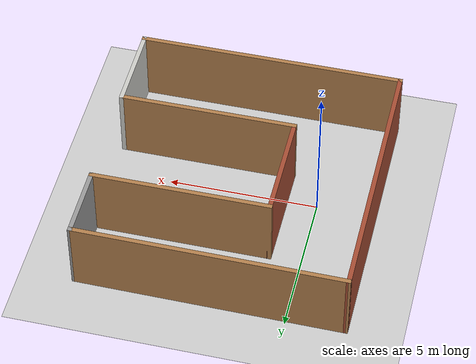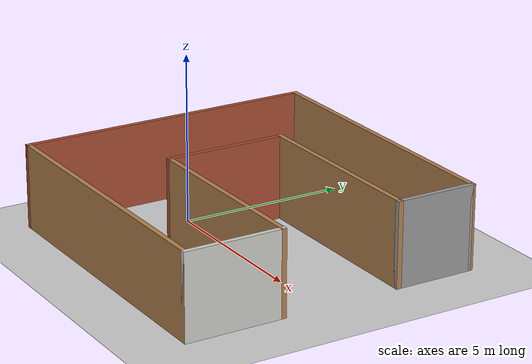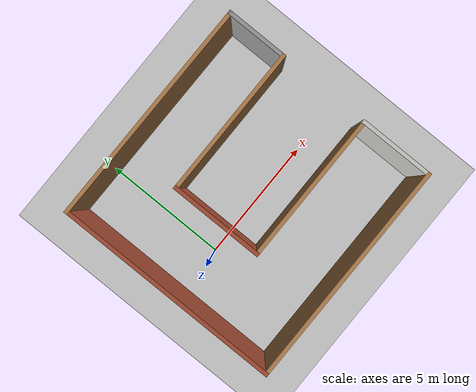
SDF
<sdf version="1.7">
 <world name="default">
  <light name="sun" type="directional">
   <pose>0 0 10 0 -0 0</pose>
   <diffuse>0.8 0.8 0.8 1</diffuse>
   <specular>0.2 0.2 0.2 1</specular>
   <attenuation>
    <range>1000</range>
    <constant>0.9</constant>
    <linear>0.01</linear>
    <quadratic>0.001</quadratic>
   </attenuation>
   <direction>-0.5 0.1 -0.9</direction>
   <spot><inner_angle>0</inner_angle><outer_angle>0</outer_angle><falloff>0</falloff></spot>
  </light>
  <model name="ground_plane">
   <static>1</static>
   <link name="link">
    <collision name="collision">
     <geometry><plane><normal>0 0 1</normal><size>100 100</size></plane></geometry>
     <surface>
      <contact><collide_bitmask>65535</collide_bitmask></contact>
      <friction><ode><mu>100</mu><mu2>50</mu2></ode></friction>
     </surface>
    </collision>
    <visual name="visual">
     <cast_shadows>0</cast_shadows>
     <geometry><plane><normal>0 0 1</normal><size>100 100</size></plane></geometry>
     <material>
      <script><uri>file://media/materials/scripts/gazebo.material</uri><name>Gazebo/Grey</name></script>
     </material>
    </visual>
   </link>
  </model>
  <gravity>0 0 -9.8</gravity>
  <magnetic_field>6e-06 2.3e-05 -4.2e-05</magnetic_field>
  <atmosphere type="adiabatic"/>
  <physics type="ode">
   <max_step_size>0.001</max_step_size>
   <real_time_factor>1</real_time_factor>
   <real_time_update_rate>1000</real_time_update_rate>
  </physics>
  <scene><ambient>0.4 0.4 0.4 1</ambient><background>0.7 0.7 0.7 1</background><shadows>1</shadows></scene>
  <audio><device>default</device></audio>
  <spherical_coordinates>
   <surface_model>EARTH_WGS84</surface_model>
   <latitude_deg>0</latitude_deg>
   <longitude_deg>0</longitude_deg>
   <elevation>0</elevation>
   <heading_deg>0</heading_deg>
  </spherical_coordinates>
  <model name="c_shape_model">
   <pose>2.48758 0.423548 0 0 -0 0</pose>
   <link name="Wall_10">
    <collision name="Wall_10_Collision">
     <geometry><box><size>3.75 0.15 2.5</size></box></geometry>
     <pose>0 0 1.25 0 -0 0</pose>
    </collision>
    <visual name="Wall_10_Visual">
     <pose>0 0 1.25 0 -0 0</pose>
     <geometry><box><size>3.75 0.15 2.5</size></box></geometry>
     <material>
      <script><uri>file://media/materials/scripts/gazebo.material</uri><name>Gazebo/Bricks</name></script>
      <ambient>1 1 1 1</ambient>
     </material>
     <meta><layer>0</layer></meta>
    </visual>
    <pose>-1.425 0.224789 0 0 -0 1.5708</pose>
   </link>
   <link name="Wall_11">
    <collision name="Wall_11_Collision">
     <geometry><box><size>6.00008 0.15 2.5</size></box></geometry>
     <pose>0 0 1.25 0 -0 0</pose>
    </collision>
    <visual name="Wall_11_Visual">
     <pose>0 0 1.25 0 -0 0</pose>
     <geometry><box><size>6.00008 0.15 2.5</size></box></geometry>
     <material>
      <script><uri>file://media/materials/scripts/gazebo.material</uri><name>Gazebo/Wood</name></script>
      <ambient>1 1 1 1</ambient>
     </material>
     <meta><layer>0</layer></meta>
    </visual>
    <pose>1.5 2.02479 0 0 -0 0</pose>
   </link>
   <link name="Wall_12">
    <collision name="Wall_12_Collision">
     <geometry><box><size>2.5 0.15 2.5</size></box></geometry>
     <pose>0 0 1.25 0 -0 0</pose>
    </collision>
    <visual name="Wall_12_Visual">
     <pose>0 0 1.25 0 -0 0</pose>
     <geometry><box><size>2.5 0.15 2.5</size></box></geometry>
     <material>
      <script><uri>file://media/materials/scripts/gazebo.material</uri><name>Gazebo/Grey</name></script>
      <ambient>1 1 1 1</ambient>
     </material>
     <meta><layer>0</layer></meta>
    </visual>
    <pose>4.425 3.19979 0 0 -0 1.5708</pose>
   </link>
   <link name="Wall_14">
    <collision name="Wall_14_Collision">
     <geometry><box><size>0.15 0.15 2.5</size></box></geometry>
     <pose>0 0 1.25 0 -0 0</pose>
    </collision>
    <visual name="Wall_14_Visual">
     <pose>0 0 1.25 0 -0 0</pose>
     <geometry><box><size>0.15 0.15 2.5</size></box></geometry>
     <material>
      <script><uri>file://media/materials/scripts/gazebo.material</uri><name>Gazebo/Grey</name></script>
      <ambient>1 1 1 1</ambient>
     </material>
     <meta><layer>0</layer></meta>
    </visual>
    <pose>4.425 4.37479 0 0 -0 0</pose>
   </link>
   <link name="Wall_16">
    <collision name="Wall_16_Collision">
     <geometry><box><size>9.00014 0.15 2.5</size></box></geometry>
     <pose>0 0 1.25 0 -0 0</pose>
    </collision>
    <visual name="Wall_16_Visual">
     <pose>0 0 1.25 0 -0 0</pose>
     <geometry><box><size>9.00014 0.15 2.5</size></box></geometry>
     <material>
      <script><uri>file://media/materials/scripts/gazebo.material</uri><name>Gazebo/Wood</name></script>
      <ambient>1 1 1 1</ambient>
     </material>
     <meta><layer>0</layer></meta>
    </visual>
    <pose>0 4.39979 0 0 -0 3.13594</pose>
   </link>
   <link name="Wall_5">
    <collision name="Wall_5_Collision">
     <geometry><box><size>9 0.15 2.5</size></box></geometry>
     <pose>0 0 1.25 0 -0 0</pose>
    </collision>
    <visual name="Wall_5_Visual">
     <pose>0 0 1.25 0 -0 0</pose>
     <geometry><box><size>9 0.15 2.5</size></box></geometry>
     <material>
      <script><uri>file://media/materials/scripts/gazebo.material</uri><name>Gazebo/Bricks</name></script>
      <ambient>1 1 1 1</ambient>
     </material>
     <meta><layer>0</layer></meta>
    </visual>
    <pose>-4.425 -0.000211 0 0 -0 -1.5708</pose>
   </link>
   <link name="Wall_7">
    <collision name="Wall_7_Collision">
     <geometry><box><size>9 0.15 2.5</size></box></geometry>
     <pose>0 0 1.25 0 -0 0</pose>
    </collision>
    <visual name="Wall_7_Visual">
     <pose>0 0 1.25 0 -0 0</pose>
     <geometry><box><size>9 0.15 2.5</size></box></geometry>
     <material>
      <script><uri>file://media/materials/scripts/gazebo.material</uri><name>Gazebo/Wood</name></script>
      <ambient>1 1 1 1</ambient>
     </material>
     <meta><layer>0</layer></meta>
    </visual>
    <pose>0 -4.42521 0 0 -0 0</pose>
   </link>
   <link name="Wall_8">
    <collision name="Wall_8_Collision">
     <geometry><box><size>3 0.15 2.5</size></box></geometry>
     <pose>0 0 1.25 0 -0 0</pose>
    </collision>
    <visual name="Wall_8_Visual">
     <pose>0 0 1.25 0 -0 0</pose>
     <geometry><box><size>3 0.15 2.5</size></box></geometry>
     <material>
      <script><uri>file://media/materials/scripts/gazebo.material</uri><name>Gazebo/CeilingTiled</name></script>
      <ambient>1 1 1 1</ambient>
     </material>
     <meta><layer>0</layer></meta>
    </visual>
    <pose>4.425 -3.00021 0 0 -0 1.5708</pose>
   </link>
   <link name="Wall_9">
    <collision name="Wall_9_Collision">
     <geometry><box><size>6 0.15 2.5</size></box></geometry>
     <pose>0 0 1.25 0 -0 0</pose>
    </collision>
    <visual name="Wall_9_Visual">
     <pose>0 0 1.25 0 -0 0</pose>
     <geometry><box><size>6 0.15 2.5</size></box></geometry>
     <material>
      <script><uri>file://media/materials/scripts/gazebo.material</uri><name>Gazebo/Wood</name></script>
      <ambient>1 1 1 1</ambient>
     </material>
     <meta><layer>0</layer></meta>
    </visual>
    <pose>1.5 -1.57521 0 0 -0 3.14159</pose>
   </link>
   <static>1</static>
  </model>
 </world>
</sdf>
